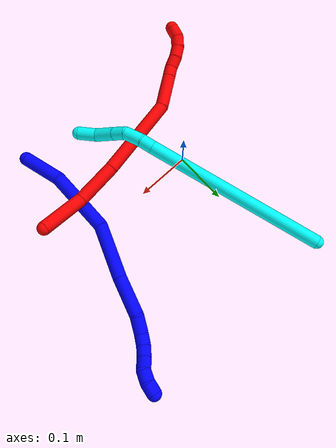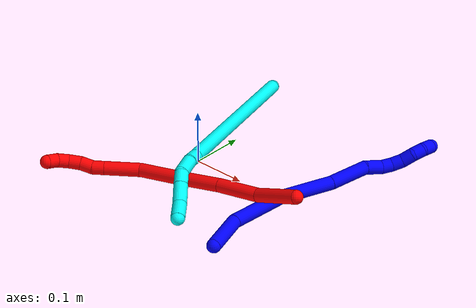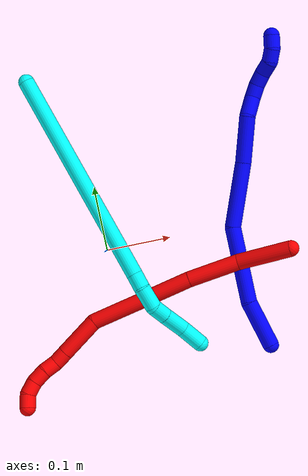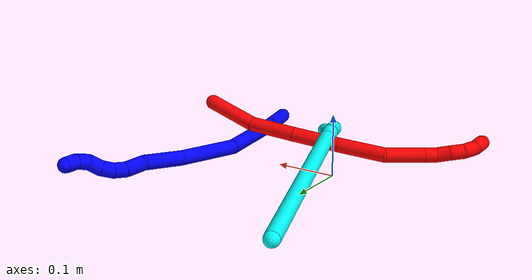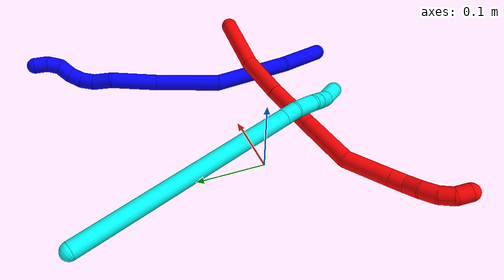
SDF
<sdf version="1.7">
 <world name="default">
  <plugin name="TubeGeneratorPlugin" filename="libtube_generator_plugin.so"/>
  <model name="photoneo_s_sensor">
   <static>1</static>
   <pose>0 0 2 1.57079 1.57079 3.14159</pose>
   <link name="link">
    <inertial><mass>0.1</mass></inertial>
    <sensor name="sensor" type="depth">
     <update_rate>30</update_rate>
     <camera>
      <horizontal_fov>1.22</horizontal_fov>
      <image><width>1920</width><height>1200</height><format>B8G8R8</format></image>
      <clip><near>0.1</near><far>4</far></clip>
      <depth_camera><output>points</output></depth_camera>
     </camera>
     <plugin name="camera_plugin" filename="libgazebo_ros_depth_camera.so">
      <baseline>0.2</baseline>
      <alwaysOn>1</alwaysOn>
      <updateRate>0.0</updateRate>
      <cameraName>camera_ir</cameraName>
      <imageTopicName>/camera/color/image_raw</imageTopicName>
      <cameraInfoTopicName>/camera/color/camera_info</cameraInfoTopicName>
      <depthImageTopicName>/camera/depth/image_raw</depthImageTopicName>
      <depthImageCameraInfoTopicName>/camera/depth/camera_info</depthImageCameraInfoTopicName>
      <pointCloudTopicName>/camera/depth/points</pointCloudTopicName>
      <frameName>fr_optical</frameName>
      <pointCloudCutoff>0.1</pointCloudCutoff>
      <pointCloudCutoffMax>2.0</pointCloudCutoffMax>
      <distortionK1>0</distortionK1>
      <distortionK2>0</distortionK2>
      <distortionK3>0</distortionK3>
      <distortionT1>0</distortionT1>
      <distortionT2>0</distortionT2>
      <CxPrime>0</CxPrime>
      <Cx>0</Cx>
      <Cy>0</Cy>
      <focalLength>0</focalLength>
      <hackBaseline>0</hackBaseline>
     </plugin>
    </sensor>
   </link>
  </model>
  <gravity>0 0 -9.8</gravity>
  <magnetic_field>6e-06 2.3e-05 -4.2e-05</magnetic_field>
  <atmosphere type="adiabatic"/>
  <physics name="default_physics" default="0" type="ode">
   <max_step_size>0.003</max_step_size>
   <real_time_factor>1</real_time_factor>
   <real_time_update_rate>1000</real_time_update_rate>
   <max_contacts>10000</max_contacts>
   <ode>
    <solver>
     <type>quick</type>
     <iters>100</iters>
     <sor>1.3</sor>
     <use_dynamic_moi_rescaling>0</use_dynamic_moi_rescaling>
    </solver>
    <constraints>
     <contact_max_correcting_vel>0</contact_max_correcting_vel>
     <contact_surface_layer>0.001</contact_surface_layer>
     <cfm>0</cfm>
     <erp>0.2</erp>
    </constraints>
   </ode>
  </physics>
  <scene><ambient>0.4 0.4 0.4 1</ambient><background>0.7 0.7 0.7 1</background><shadows>0</shadows></scene>
  <audio><device>default</device></audio>
  <spherical_coordinates>
   <surface_model>EARTH_WGS84</surface_model>
   <latitude_deg>0</latitude_deg>
   <longitude_deg>0</longitude_deg>
   <elevation>0</elevation>
   <heading_deg>0</heading_deg>
  </spherical_coordinates>
  <model name="bin">
   <static>1</static>
   <link name="bottom">
    <collision name="collision-bottom">
     <pose>0 0 -0.01 0 -0 0</pose>
     <geometry><box><size>0.8 0.6 0.02</size></box></geometry>
     <surface>
      <friction><ode><mu>100</mu><mu2>100</mu2></ode></friction>
      <contact><collide_bitmask>65535</collide_bitmask></contact>
     </surface>
    </collision>
   </link>
   <link name="west_wall">
    <collision name="collision-west_wall">
     <pose>-0.41 0 0.1 0 -0 0</pose>
     <geometry><box><size>0.02 0.6 0.2</size></box></geometry>
     <surface>
      <friction><ode><mu>100</mu><mu2>100</mu2></ode></friction>
      <contact><collide_bitmask>65535</collide_bitmask></contact>
     </surface>
    </collision>
   </link>
   <link name="east_wall">
    <collision name="collision-east_wall">
     <pose>0.41 0 0.1 0 -0 0</pose>
     <geometry><box><size>0.02 0.6 0.2</size></box></geometry>
     <surface>
      <friction><ode><mu>100</mu><mu2>100</mu2></ode></friction>
      <contact><collide_bitmask>65535</collide_bitmask></contact>
     </surface>
    </collision>
   </link>
   <link name="south_wall">
    <collision name="collision-south_wall">
     <pose>0 -0.31 0.1 0 -0 0</pose>
     <geometry><box><size>0.8 0.02 0.2</size></box></geometry>
     <surface>
      <friction><ode><mu>100</mu><mu2>100</mu2></ode></friction>
      <contact><collide_bitmask>65535</collide_bitmask></contact>
     </surface>
    </collision>
   </link>
   <link name="north_wall">
    <collision name="collision-north_wall">
     <pose>0 0.31 0.1 0 -0 0</pose>
     <geometry><box><size>0.8 0.02 0.2</size></box></geometry>
     <surface>
      <friction><ode><mu>100</mu><mu2>100</mu2></ode></friction>
      <contact><collide_bitmask>65535</collide_bitmask></contact>
     </surface>
    </collision>
   </link>
  </model>
  <model name="1">
   <static>0</static>
   <link name="1">
    <collision name="collision-cylinder-e_1_1_4">
     <pose>0.008022 0.035166 0.00889 -1.32319 0.217657 -0.169745</pose>
     <geometry><cylinder><radius>0.0125</radius><length>0.074298</length></cylinder></geometry>
     <surface>
      <friction><ode><mu>1.16</mu><mu2>1.16</mu2><slip1>0</slip1><slip2>0</slip2></ode></friction>
      <contact><ode><kp>1e+06</kp><kd>1</kd><max_vel>0</max_vel><min_depth>0.001</min_depth></ode></contact>
     </surface>
    </collision>
    <visual name="visual-cylinder-e_1_1_4">
     <pose>0.008022 0.035166 0.00889 -1.32319 0.217657 -0.169745</pose>
     <geometry><cylinder><radius>0.0125</radius><length>0.074298</length></cylinder></geometry>
     <material><ambient>0 0 1 1</ambient></material>
    </visual>
    <collision name="collision-cylinder-e_2_4_5">
     <pose>0.012756 0.125645 0.038302 -1.21552 -0.055672 0.03873</pose>
     <geometry><cylinder><radius>0.0125</radius><length>0.118177</length></cylinder></geometry>
     <surface>
      <friction><ode><mu>1.16</mu><mu2>1.16</mu2><slip1>0</slip1><slip2>0</slip2></ode></friction>
      <contact><ode><kp>1e+06</kp><kd>1</kd><max_vel>0</max_vel><min_depth>0.001</min_depth></ode></contact>
     </surface>
    </collision>
    <visual name="visual-cylinder-e_2_4_5">
     <pose>0.012756 0.125645 0.038302 -1.21552 -0.055672 0.03873</pose>
     <geometry><cylinder><radius>0.0125</radius><length>0.118177</length></cylinder></geometry>
     <material><ambient>0 0 1 1</ambient></material>
    </visual>
    <collision name="collision-cylinder-e_3_5_6">
     <pose>-0.011006 0.225664 0.070281 -1.31992 -0.417543 0.325907</pose>
     <geometry><cylinder><radius>0.0125</radius><length>0.100978</length></cylinder></geometry>
     <surface>
      <friction><ode><mu>1.16</mu><mu2>1.16</mu2><slip1>0</slip1><slip2>0</slip2></ode></friction>
      <contact><ode><kp>1e+06</kp><kd>1</kd><max_vel>0</max_vel><min_depth>0.001</min_depth></ode></contact>
     </surface>
    </collision>
    <visual name="visual-cylinder-e_3_5_6">
     <pose>-0.011006 0.225664 0.070281 -1.31992 -0.417543 0.325907</pose>
     <geometry><cylinder><radius>0.0125</radius><length>0.100978</length></cylinder></geometry>
     <material><ambient>0 0 1 1</ambient></material>
    </visual>
    <collision name="collision-cylinder-e_4_6_7">
     <pose>-0.043296 0.304324 0.086532 -1.43052 -0.331854 0.288934</pose>
     <geometry><cylinder><radius>0.0125</radius><length>0.072537</length></cylinder></geometry>
     <surface>
      <friction><ode><mu>1.16</mu><mu2>1.16</mu2><slip1>0</slip1><slip2>0</slip2></ode></friction>
      <contact><ode><kp>1e+06</kp><kd>1</kd><max_vel>0</max_vel><min_depth>0.001</min_depth></ode></contact>
     </surface>
    </collision>
    <visual name="visual-cylinder-e_4_6_7">
     <pose>-0.043296 0.304324 0.086532 -1.43052 -0.331854 0.288934</pose>
     <geometry><cylinder><radius>0.0125</radius><length>0.072537</length></cylinder></geometry>
     <material><ambient>0 0 1 1</ambient></material>
    </visual>
    <collision name="collision-cylinder-e_5_7_8">
     <pose>-0.063043 0.350066 0.097467 -1.09061 -0.537945 0.331392</pose>
     <geometry><cylinder><radius>0.0125</radius><length>0.030958</length></cylinder></geometry>
     <surface>
      <friction><ode><mu>1.16</mu><mu2>1.16</mu2><slip1>0</slip1><slip2>0</slip2></ode></friction>
      <contact><ode><kp>1e+06</kp><kd>1</kd><max_vel>0</max_vel><min_depth>0.001</min_depth></ode></contact>
     </surface>
    </collision>
    <visual name="visual-cylinder-e_5_7_8">
     <pose>-0.063043 0.350066 0.097467 -1.09061 -0.537945 0.331392</pose>
     <geometry><cylinder><radius>0.0125</radius><length>0.030958</length></cylinder></geometry>
     <material><ambient>0 0 1 1</ambient></material>
    </visual>
    <collision name="collision-cylinder-e_6_8_9">
     <pose>-0.076534 0.370328 0.104964 -1.41208 -0.574944 0.493908</pose>
     <geometry><cylinder><radius>0.0125</radius><length>0.020448</length></cylinder></geometry>
     <surface>
      <friction><ode><mu>1.16</mu><mu2>1.16</mu2><slip1>0</slip1><slip2>0</slip2></ode></friction>
      <contact><ode><kp>1e+06</kp><kd>1</kd><max_vel>0</max_vel><min_depth>0.001</min_depth></ode></contact>
     </surface>
    </collision>
    <visual name="visual-cylinder-e_6_8_9">
     <pose>-0.076534 0.370328 0.104964 -1.41208 -0.574944 0.493908</pose>
     <geometry><cylinder><radius>0.0125</radius><length>0.020448</length></cylinder></geometry>
     <material><ambient>0 0 1 1</ambient></material>
    </visual>
    <collision name="collision-cylinder-e_7_9_10">
     <pose>-0.088354 0.386907 0.104971 -1.73568 -0.650983 0.75807</pose>
     <geometry><cylinder><radius>0.0125</radius><length>0.020662</length></cylinder></geometry>
     <surface>
      <friction><ode><mu>1.16</mu><mu2>1.16</mu2><slip1>0</slip1><slip2>0</slip2></ode></friction>
      <contact><ode><kp>1e+06</kp><kd>1</kd><max_vel>0</max_vel><min_depth>0.001</min_depth></ode></contact>
     </surface>
    </collision>
    <visual name="visual-cylinder-e_7_9_10">
     <pose>-0.088354 0.386907 0.104971 -1.73568 -0.650983 0.75807</pose>
     <geometry><cylinder><radius>0.0125</radius><length>0.020662</length></cylinder></geometry>
     <material><ambient>0 0 1 1</ambient></material>
    </visual>
    <collision name="collision-cylinder-e_8_10_11">
     <pose>-0.100864 0.402775 0.099382 -2.07077 -0.615181 0.983311</pose>
     <geometry><cylinder><radius>0.0125</radius><length>0.021659</length></cylinder></geometry>
     <surface>
      <friction><ode><mu>1.16</mu><mu2>1.16</mu2><slip1>0</slip1><slip2>0</slip2></ode></friction>
      <contact><ode><kp>1e+06</kp><kd>1</kd><max_vel>0</max_vel><min_depth>0.001</min_depth></ode></contact>
     </surface>
    </collision>
    <visual name="visual-cylinder-e_8_10_11">
     <pose>-0.100864 0.402775 0.099382 -2.07077 -0.615181 0.983311</pose>
     <geometry><cylinder><radius>0.0125</radius><length>0.021659</length></cylinder></geometry>
     <material><ambient>0 0 1 1</ambient></material>
    </visual>
    <collision name="collision-cylinder-e_9_11_12">
     <pose>-0.111067 0.419786 0.095088 -1.5766 -0.40391 0.406196</pose>
     <geometry><cylinder><radius>0.0125</radius><length>0.020118</length></cylinder></geometry>
     <surface>
      <friction><ode><mu>1.16</mu><mu2>1.16</mu2><slip1>0</slip1><slip2>0</slip2></ode></friction>
      <contact><ode><kp>1e+06</kp><kd>1</kd><max_vel>0</max_vel><min_depth>0.001</min_depth></ode></contact>
     </surface>
    </collision>
    <visual name="visual-cylinder-e_9_11_12">
     <pose>-0.111067 0.419786 0.095088 -1.5766 -0.40391 0.406196</pose>
     <geometry><cylinder><radius>0.0125</radius><length>0.020118</length></cylinder></geometry>
     <material><ambient>0 0 1 1</ambient></material>
    </visual>
    <collision name="collision-cylinder-e_10_12_2">
     <pose>-0.117126 0.438432 0.098025 -1.26266 -0.210411 0.154108</pose>
     <geometry><cylinder><radius>0.0125</radius><length>0.020165</length></cylinder></geometry>
     <surface>
      <friction><ode><mu>1.16</mu><mu2>1.16</mu2><slip1>0</slip1><slip2>0</slip2></ode></friction>
      <contact><ode><kp>1e+06</kp><kd>1</kd><max_vel>0</max_vel><min_depth>0.001</min_depth></ode></contact>
     </surface>
    </collision>
    <visual name="visual-cylinder-e_10_12_2">
     <pose>-0.117126 0.438432 0.098025 -1.26266 -0.210411 0.154108</pose>
     <geometry><cylinder><radius>0.0125</radius><length>0.020165</length></cylinder></geometry>
     <material><ambient>0 0 1 1</ambient></material>
    </visual>
    <collision name="collision-sphere-2">
     <pose>-0.119232 0.447827 0.101016 0 -0 0</pose>
     <geometry><sphere><radius>0.0125</radius></sphere></geometry>
     <surface>
      <friction><ode><mu>1.16</mu><mu2>1.16</mu2><slip1>0</slip1><slip2>0</slip2></ode></friction>
      <contact><ode><kp>1e+06</kp><kd>1</kd><max_vel>0</max_vel><min_depth>0.001</min_depth></ode></contact>
     </surface>
    </collision>
    <visual name="visual-sphere-2">
     <pose>-0.119232 0.447827 0.101016 0 -0 0</pose>
     <geometry><sphere><radius>0.0125</radius></sphere></geometry>
     <material><ambient>0 0 1 1</ambient></material>
    </visual>
    <collision name="collision-sphere-12">
     <pose>-0.11502 0.429036 0.095035 0 -0 0</pose>
     <geometry><sphere><radius>0.0125</radius></sphere></geometry>
     <surface>
      <friction><ode><mu>1.16</mu><mu2>1.16</mu2><slip1>0</slip1><slip2>0</slip2></ode></friction>
      <contact><ode><kp>1e+06</kp><kd>1</kd><max_vel>0</max_vel><min_depth>0.001</min_depth></ode></contact>
     </surface>
    </collision>
    <visual name="visual-sphere-12">
     <pose>-0.11502 0.429036 0.095035 0 -0 0</pose>
     <geometry><sphere><radius>0.0125</radius></sphere></geometry>
     <material><ambient>0 0 1 1</ambient></material>
    </visual>
    <collision name="collision-sphere-11">
     <pose>-0.107114 0.410537 0.095142 0 -0 0</pose>
     <geometry><sphere><radius>0.0125</radius></sphere></geometry>
     <surface>
      <friction><ode><mu>1.16</mu><mu2>1.16</mu2><slip1>0</slip1><slip2>0</slip2></ode></friction>
      <contact><ode><kp>1e+06</kp><kd>1</kd><max_vel>0</max_vel><min_depth>0.001</min_depth></ode></contact>
     </surface>
    </collision>
    <visual name="visual-sphere-11">
     <pose>-0.107114 0.410537 0.095142 0 -0 0</pose>
     <geometry><sphere><radius>0.0125</radius></sphere></geometry>
     <material><ambient>0 0 1 1</ambient></material>
    </visual>
    <collision name="collision-sphere-10">
     <pose>-0.094614 0.395014 0.103622 0 -0 0</pose>
     <geometry><sphere><radius>0.0125</radius></sphere></geometry>
     <surface>
      <friction><ode><mu>1.16</mu><mu2>1.16</mu2><slip1>0</slip1><slip2>0</slip2></ode></friction>
      <contact><ode><kp>1e+06</kp><kd>1</kd><max_vel>0</max_vel><min_depth>0.001</min_depth></ode></contact>
     </surface>
    </collision>
    <visual name="visual-sphere-10">
     <pose>-0.094614 0.395014 0.103622 0 -0 0</pose>
     <geometry><sphere><radius>0.0125</radius></sphere></geometry>
     <material><ambient>0 0 1 1</ambient></material>
    </visual>
    <collision name="collision-sphere-9">
     <pose>-0.082093 0.3788 0.10632 0 -0 0</pose>
     <geometry><sphere><radius>0.0125</radius></sphere></geometry>
     <surface>
      <friction><ode><mu>1.16</mu><mu2>1.16</mu2><slip1>0</slip1><slip2>0</slip2></ode></friction>
      <contact><ode><kp>1e+06</kp><kd>1</kd><max_vel>0</max_vel><min_depth>0.001</min_depth></ode></contact>
     </surface>
    </collision>
    <visual name="visual-sphere-9">
     <pose>-0.082093 0.3788 0.10632 0 -0 0</pose>
     <geometry><sphere><radius>0.0125</radius></sphere></geometry>
     <material><ambient>0 0 1 1</ambient></material>
    </visual>
    <collision name="collision-sphere-4">
     <pose>0.016044 0.070332 0.01778 0 -0 0</pose>
     <geometry><sphere><radius>0.0125</radius></sphere></geometry>
     <surface>
      <friction><ode><mu>1.16</mu><mu2>1.16</mu2><slip1>0</slip1><slip2>0</slip2></ode></friction>
      <contact><ode><kp>1e+06</kp><kd>1</kd><max_vel>0</max_vel><min_depth>0.001</min_depth></ode></contact>
     </surface>
    </collision>
    <visual name="visual-sphere-4">
     <pose>0.016044 0.070332 0.01778 0 -0 0</pose>
     <geometry><sphere><radius>0.0125</radius></sphere></geometry>
     <material><ambient>0 0 1 1</ambient></material>
    </visual>
    <collision name="collision-sphere-1">
     <geometry><sphere><radius>0.0125</radius></sphere></geometry>
     <surface>
      <friction><ode><mu>1.16</mu><mu2>1.16</mu2><slip1>0</slip1><slip2>0</slip2></ode></friction>
      <contact><ode><kp>1e+06</kp><kd>1</kd><max_vel>0</max_vel><min_depth>0.001</min_depth></ode></contact>
     </surface>
    </collision>
    <visual name="visual-sphere-1">
     <geometry><sphere><radius>0.0125</radius></sphere></geometry>
     <material><ambient>0 0 1 1</ambient></material>
    </visual>
    <collision name="collision-sphere-8">
     <pose>-0.070974 0.361855 0.103608 0 -0 0</pose>
     <geometry><sphere><radius>0.0125</radius></sphere></geometry>
     <surface>
      <friction><ode><mu>1.16</mu><mu2>1.16</mu2><slip1>0</slip1><slip2>0</slip2></ode></friction>
      <contact><ode><kp>1e+06</kp><kd>1</kd><max_vel>0</max_vel><min_depth>0.001</min_depth></ode></contact>
     </surface>
    </collision>
    <visual name="visual-sphere-8">
     <pose>-0.070974 0.361855 0.103608 0 -0 0</pose>
     <geometry><sphere><radius>0.0125</radius></sphere></geometry>
     <material><ambient>0 0 1 1</ambient></material>
    </visual>
    <collision name="collision-sphere-5">
     <pose>0.009468 0.180957 0.058824 0 -0 0</pose>
     <geometry><sphere><radius>0.0125</radius></sphere></geometry>
     <surface>
      <friction><ode><mu>1.16</mu><mu2>1.16</mu2><slip1>0</slip1><slip2>0</slip2></ode></friction>
      <contact><ode><kp>1e+06</kp><kd>1</kd><max_vel>0</max_vel><min_depth>0.001</min_depth></ode></contact>
     </surface>
    </collision>
    <visual name="visual-sphere-5">
     <pose>0.009468 0.180957 0.058824 0 -0 0</pose>
     <geometry><sphere><radius>0.0125</radius></sphere></geometry>
     <material><ambient>0 0 1 1</ambient></material>
    </visual>
    <collision name="collision-sphere-6">
     <pose>-0.03148 0.270371 0.081738 0 -0 0</pose>
     <geometry><sphere><radius>0.0125</radius></sphere></geometry>
     <surface>
      <friction><ode><mu>1.16</mu><mu2>1.16</mu2><slip1>0</slip1><slip2>0</slip2></ode></friction>
      <contact><ode><kp>1e+06</kp><kd>1</kd><max_vel>0</max_vel><min_depth>0.001</min_depth></ode></contact>
     </surface>
    </collision>
    <visual name="visual-sphere-6">
     <pose>-0.03148 0.270371 0.081738 0 -0 0</pose>
     <geometry><sphere><radius>0.0125</radius></sphere></geometry>
     <material><ambient>0 0 1 1</ambient></material>
    </visual>
    <collision name="collision-sphere-7">
     <pose>-0.055112 0.338276 0.091327 0 -0 0</pose>
     <geometry><sphere><radius>0.0125</radius></sphere></geometry>
     <surface>
      <friction><ode><mu>1.16</mu><mu2>1.16</mu2><slip1>0</slip1><slip2>0</slip2></ode></friction>
      <contact><ode><kp>1e+06</kp><kd>1</kd><max_vel>0</max_vel><min_depth>0.001</min_depth></ode></contact>
     </surface>
    </collision>
    <visual name="visual-sphere-7">
     <pose>-0.055112 0.338276 0.091327 0 -0 0</pose>
     <geometry><sphere><radius>0.0125</radius></sphere></geometry>
     <material><ambient>0 0 1 1</ambient></material>
    </visual>
    <inertial>
     <pose>-0.028543 0.229474 0.063871 0 -0 0</pose>
     <mass>0.5</mass>
     <inertia>
      <ixx>0.000325</ixx>
      <ixy>0</ixy>
      <ixz>0</ixz>
      <iyy>0.000179</iyy>
      <iyz>0</iyz>
      <izz>-0.000228</izz>
     </inertia>
    </inertial>
   </link>
   <pose>0.218226 -0.194037 0.018084 2.86183 -0.053919 -3.08892</pose>
  </model>
  <model name="2">
   <static>0</static>
   <link name="2">
    <collision name="collision-cylinder-e_1_1_4">
     <pose>-0.023973 -0.015345 0.031446 0.453993 -0.600675 -0.142827</pose>
     <geometry><cylinder><radius>0.0125</radius><length>0.08483</length></cylinder></geometry>
     <surface>
      <friction><ode><mu>1.16</mu><mu2>1.16</mu2><slip1>0</slip1><slip2>0</slip2></ode></friction>
      <contact><ode><kp>1e+06</kp><kd>1</kd><max_vel>0</max_vel><min_depth>0.001</min_depth></ode></contact>
     </surface>
    </collision>
    <visual name="visual-cylinder-e_1_1_4">
     <pose>-0.023973 -0.015345 0.031446 0.453993 -0.600675 -0.142827</pose>
     <geometry><cylinder><radius>0.0125</radius><length>0.08483</length></cylinder></geometry>
     <material><ambient>1 0 0 1</ambient></material>
    </visual>
    <collision name="collision-cylinder-e_2_4_5">
     <pose>-0.069574 -0.036063 0.095914 0.161262 -0.573875 -0.04768</pose>
     <geometry><cylinder><radius>0.0125</radius><length>0.079677</length></cylinder></geometry>
     <surface>
      <friction><ode><mu>1.16</mu><mu2>1.16</mu2><slip1>0</slip1><slip2>0</slip2></ode></friction>
      <contact><ode><kp>1e+06</kp><kd>1</kd><max_vel>0</max_vel><min_depth>0.001</min_depth></ode></contact>
     </surface>
    </collision>
    <visual name="visual-cylinder-e_2_4_5">
     <pose>-0.069574 -0.036063 0.095914 0.161262 -0.573875 -0.04768</pose>
     <geometry><cylinder><radius>0.0125</radius><length>0.079677</length></cylinder></geometry>
     <material><ambient>1 0 0 1</ambient></material>
    </visual>
    <collision name="collision-cylinder-e_3_5_6">
     <pose>-0.110061 -0.047411 0.163655 0.17046 -0.491511 -0.042853</pose>
     <geometry><cylinder><radius>0.0125</radius><length>0.079919</length></cylinder></geometry>
     <surface>
      <friction><ode><mu>1.16</mu><mu2>1.16</mu2><slip1>0</slip1><slip2>0</slip2></ode></friction>
      <contact><ode><kp>1e+06</kp><kd>1</kd><max_vel>0</max_vel><min_depth>0.001</min_depth></ode></contact>
     </surface>
    </collision>
    <visual name="visual-cylinder-e_3_5_6">
     <pose>-0.110061 -0.047411 0.163655 0.17046 -0.491511 -0.042853</pose>
     <geometry><cylinder><radius>0.0125</radius><length>0.079919</length></cylinder></geometry>
     <material><ambient>1 0 0 1</ambient></material>
    </visual>
    <collision name="collision-cylinder-e_4_6_7">
     <pose>-0.148603 -0.058716 0.234072 0.148204 -0.499242 -0.037848</pose>
     <geometry><cylinder><radius>0.0125</radius><length>0.082223</length></cylinder></geometry>
     <surface>
      <friction><ode><mu>1.16</mu><mu2>1.16</mu2><slip1>0</slip1><slip2>0</slip2></ode></friction>
      <contact><ode><kp>1e+06</kp><kd>1</kd><max_vel>0</max_vel><min_depth>0.001</min_depth></ode></contact>
     </surface>
    </collision>
    <visual name="visual-cylinder-e_4_6_7">
     <pose>-0.148603 -0.058716 0.234072 0.148204 -0.499242 -0.037848</pose>
     <geometry><cylinder><radius>0.0125</radius><length>0.082223</length></cylinder></geometry>
     <material><ambient>1 0 0 1</ambient></material>
    </visual>
    <collision name="collision-cylinder-e_5_7_8">
     <pose>-0.171738 -0.064826 0.302273 0.023981 -0.105812 -0.00127</pose>
     <geometry><cylinder><radius>0.0125</radius><length>0.06539</length></cylinder></geometry>
     <surface>
      <friction><ode><mu>1.16</mu><mu2>1.16</mu2><slip1>0</slip1><slip2>0</slip2></ode></friction>
      <contact><ode><kp>1e+06</kp><kd>1</kd><max_vel>0</max_vel><min_depth>0.001</min_depth></ode></contact>
     </surface>
    </collision>
    <visual name="visual-cylinder-e_5_7_8">
     <pose>-0.171738 -0.064826 0.302273 0.023981 -0.105812 -0.00127</pose>
     <geometry><cylinder><radius>0.0125</radius><length>0.06539</length></cylinder></geometry>
     <material><ambient>1 0 0 1</ambient></material>
    </visual>
    <collision name="collision-cylinder-e_6_8_9">
     <pose>-0.176302 -0.065806 0.345439 0.018814 -0.103776 -0.000977</pose>
     <geometry><cylinder><radius>0.0125</radius><length>0.021446</length></cylinder></geometry>
     <surface>
      <friction><ode><mu>1.16</mu><mu2>1.16</mu2><slip1>0</slip1><slip2>0</slip2></ode></friction>
      <contact><ode><kp>1e+06</kp><kd>1</kd><max_vel>0</max_vel><min_depth>0.001</min_depth></ode></contact>
     </surface>
    </collision>
    <visual name="visual-cylinder-e_6_8_9">
     <pose>-0.176302 -0.065806 0.345439 0.018814 -0.103776 -0.000977</pose>
     <geometry><cylinder><radius>0.0125</radius><length>0.021446</length></cylinder></geometry>
     <material><ambient>1 0 0 1</ambient></material>
    </visual>
    <collision name="collision-cylinder-e_7_9_10">
     <pose>-0.180726 -0.063974 0.366501 -0.192996 -0.303074 0.029562</pose>
     <geometry><cylinder><radius>0.0125</radius><length>0.022202</length></cylinder></geometry>
     <surface>
      <friction><ode><mu>1.16</mu><mu2>1.16</mu2><slip1>0</slip1><slip2>0</slip2></ode></friction>
      <contact><ode><kp>1e+06</kp><kd>1</kd><max_vel>0</max_vel><min_depth>0.001</min_depth></ode></contact>
     </surface>
    </collision>
    <visual name="visual-cylinder-e_7_9_10">
     <pose>-0.180726 -0.063974 0.366501 -0.192996 -0.303074 0.029562</pose>
     <geometry><cylinder><radius>0.0125</radius><length>0.022202</length></cylinder></geometry>
     <material><ambient>1 0 0 1</ambient></material>
    </visual>
    <collision name="collision-cylinder-e_8_10_11">
     <pose>-0.185271 -0.060822 0.388038 -0.100261 -0.109599 0.005504</pose>
     <geometry><cylinder><radius>0.0125</radius><length>0.022526</length></cylinder></geometry>
     <surface>
      <friction><ode><mu>1.16</mu><mu2>1.16</mu2><slip1>0</slip1><slip2>0</slip2></ode></friction>
      <contact><ode><kp>1e+06</kp><kd>1</kd><max_vel>0</max_vel><min_depth>0.001</min_depth></ode></contact>
     </surface>
    </collision>
    <visual name="visual-cylinder-e_8_10_11">
     <pose>-0.185271 -0.060822 0.388038 -0.100261 -0.109599 0.005504</pose>
     <geometry><cylinder><radius>0.0125</radius><length>0.022526</length></cylinder></geometry>
     <material><ambient>1 0 0 1</ambient></material>
    </visual>
    <collision name="collision-cylinder-e_9_11_12">
     <pose>-0.184879 -0.057696 0.409365 -0.194376 0.155134 -0.015155</pose>
     <geometry><cylinder><radius>0.0125</radius><length>0.021019</length></cylinder></geometry>
     <surface>
      <friction><ode><mu>1.16</mu><mu2>1.16</mu2><slip1>0</slip1><slip2>0</slip2></ode></friction>
      <contact><ode><kp>1e+06</kp><kd>1</kd><max_vel>0</max_vel><min_depth>0.001</min_depth></ode></contact>
     </surface>
    </collision>
    <visual name="visual-cylinder-e_9_11_12">
     <pose>-0.184879 -0.057696 0.409365 -0.194376 0.155134 -0.015155</pose>
     <geometry><cylinder><radius>0.0125</radius><length>0.021019</length></cylinder></geometry>
     <material><ambient>1 0 0 1</ambient></material>
    </visual>
    <collision name="collision-cylinder-e_10_12_2">
     <pose>-0.177232 -0.053434 0.427705 -0.269963 0.618845 -0.086778</pose>
     <geometry><cylinder><radius>0.0125</radius><length>0.020768</length></cylinder></geometry>
     <surface>
      <friction><ode><mu>1.16</mu><mu2>1.16</mu2><slip1>0</slip1><slip2>0</slip2></ode></friction>
      <contact><ode><kp>1e+06</kp><kd>1</kd><max_vel>0</max_vel><min_depth>0.001</min_depth></ode></contact>
     </surface>
    </collision>
    <visual name="visual-cylinder-e_10_12_2">
     <pose>-0.177232 -0.053434 0.427705 -0.269963 0.618845 -0.086778</pose>
     <geometry><cylinder><radius>0.0125</radius><length>0.020768</length></cylinder></geometry>
     <material><ambient>1 0 0 1</ambient></material>
    </visual>
    <collision name="collision-sphere-2">
     <pose>-0.171208 -0.051178 0.435857 0 -0 0</pose>
     <geometry><sphere><radius>0.0125</radius></sphere></geometry>
     <surface>
      <friction><ode><mu>1.16</mu><mu2>1.16</mu2><slip1>0</slip1><slip2>0</slip2></ode></friction>
      <contact><ode><kp>1e+06</kp><kd>1</kd><max_vel>0</max_vel><min_depth>0.001</min_depth></ode></contact>
     </surface>
    </collision>
    <visual name="visual-sphere-2">
     <pose>-0.171208 -0.051178 0.435857 0 -0 0</pose>
     <geometry><sphere><radius>0.0125</radius></sphere></geometry>
     <material><ambient>1 0 0 1</ambient></material>
    </visual>
    <collision name="collision-sphere-12">
     <pose>-0.183256 -0.05569 0.419553 0 -0 0</pose>
     <geometry><sphere><radius>0.0125</radius></sphere></geometry>
     <surface>
      <friction><ode><mu>1.16</mu><mu2>1.16</mu2><slip1>0</slip1><slip2>0</slip2></ode></friction>
      <contact><ode><kp>1e+06</kp><kd>1</kd><max_vel>0</max_vel><min_depth>0.001</min_depth></ode></contact>
     </surface>
    </collision>
    <visual name="visual-sphere-12">
     <pose>-0.183256 -0.05569 0.419553 0 -0 0</pose>
     <geometry><sphere><radius>0.0125</radius></sphere></geometry>
     <material><ambient>1 0 0 1</ambient></material>
    </visual>
    <collision name="collision-sphere-11">
     <pose>-0.186503 -0.059701 0.399178 0 -0 0</pose>
     <geometry><sphere><radius>0.0125</radius></sphere></geometry>
     <surface>
      <friction><ode><mu>1.16</mu><mu2>1.16</mu2><slip1>0</slip1><slip2>0</slip2></ode></friction>
      <contact><ode><kp>1e+06</kp><kd>1</kd><max_vel>0</max_vel><min_depth>0.001</min_depth></ode></contact>
     </surface>
    </collision>
    <visual name="visual-sphere-11">
     <pose>-0.186503 -0.059701 0.399178 0 -0 0</pose>
     <geometry><sphere><radius>0.0125</radius></sphere></geometry>
     <material><ambient>1 0 0 1</ambient></material>
    </visual>
    <collision name="collision-sphere-10">
     <pose>-0.184039 -0.061942 0.376899 0 -0 0</pose>
     <geometry><sphere><radius>0.0125</radius></sphere></geometry>
     <surface>
      <friction><ode><mu>1.16</mu><mu2>1.16</mu2><slip1>0</slip1><slip2>0</slip2></ode></friction>
      <contact><ode><kp>1e+06</kp><kd>1</kd><max_vel>0</max_vel><min_depth>0.001</min_depth></ode></contact>
     </surface>
    </collision>
    <visual name="visual-sphere-10">
     <pose>-0.184039 -0.061942 0.376899 0 -0 0</pose>
     <geometry><sphere><radius>0.0125</radius></sphere></geometry>
     <material><ambient>1 0 0 1</ambient></material>
    </visual>
    <collision name="collision-sphere-9">
     <pose>-0.177413 -0.066007 0.356103 0 -0 0</pose>
     <geometry><sphere><radius>0.0125</radius></sphere></geometry>
     <surface>
      <friction><ode><mu>1.16</mu><mu2>1.16</mu2><slip1>0</slip1><slip2>0</slip2></ode></friction>
      <contact><ode><kp>1e+06</kp><kd>1</kd><max_vel>0</max_vel><min_depth>0.001</min_depth></ode></contact>
     </surface>
    </collision>
    <visual name="visual-sphere-9">
     <pose>-0.177413 -0.066007 0.356103 0 -0 0</pose>
     <geometry><sphere><radius>0.0125</radius></sphere></geometry>
     <material><ambient>1 0 0 1</ambient></material>
    </visual>
    <collision name="collision-sphere-4">
     <pose>-0.047946 -0.030691 0.062892 0 -0 0</pose>
     <geometry><sphere><radius>0.0125</radius></sphere></geometry>
     <surface>
      <friction><ode><mu>1.16</mu><mu2>1.16</mu2><slip1>0</slip1><slip2>0</slip2></ode></friction>
      <contact><ode><kp>1e+06</kp><kd>1</kd><max_vel>0</max_vel><min_depth>0.001</min_depth></ode></contact>
     </surface>
    </collision>
    <visual name="visual-sphere-4">
     <pose>-0.047946 -0.030691 0.062892 0 -0 0</pose>
     <geometry><sphere><radius>0.0125</radius></sphere></geometry>
     <material><ambient>1 0 0 1</ambient></material>
    </visual>
    <collision name="collision-sphere-1">
     <geometry><sphere><radius>0.0125</radius></sphere></geometry>
     <surface>
      <friction><ode><mu>1.16</mu><mu2>1.16</mu2><slip1>0</slip1><slip2>0</slip2></ode></friction>
      <contact><ode><kp>1e+06</kp><kd>1</kd><max_vel>0</max_vel><min_depth>0.001</min_depth></ode></contact>
     </surface>
    </collision>
    <visual name="visual-sphere-1">
     <geometry><sphere><radius>0.0125</radius></sphere></geometry>
     <material><ambient>1 0 0 1</ambient></material>
    </visual>
    <collision name="collision-sphere-8">
     <pose>-0.175191 -0.065605 0.334776 0 -0 0</pose>
     <geometry><sphere><radius>0.0125</radius></sphere></geometry>
     <surface>
      <friction><ode><mu>1.16</mu><mu2>1.16</mu2><slip1>0</slip1><slip2>0</slip2></ode></friction>
      <contact><ode><kp>1e+06</kp><kd>1</kd><max_vel>0</max_vel><min_depth>0.001</min_depth></ode></contact>
     </surface>
    </collision>
    <visual name="visual-sphere-8">
     <pose>-0.175191 -0.065605 0.334776 0 -0 0</pose>
     <geometry><sphere><radius>0.0125</radius></sphere></geometry>
     <material><ambient>1 0 0 1</ambient></material>
    </visual>
    <collision name="collision-sphere-5">
     <pose>-0.091202 -0.041434 0.128937 0 -0 0</pose>
     <geometry><sphere><radius>0.0125</radius></sphere></geometry>
     <surface>
      <friction><ode><mu>1.16</mu><mu2>1.16</mu2><slip1>0</slip1><slip2>0</slip2></ode></friction>
      <contact><ode><kp>1e+06</kp><kd>1</kd><max_vel>0</max_vel><min_depth>0.001</min_depth></ode></contact>
     </surface>
    </collision>
    <visual name="visual-sphere-5">
     <pose>-0.091202 -0.041434 0.128937 0 -0 0</pose>
     <geometry><sphere><radius>0.0125</radius></sphere></geometry>
     <material><ambient>1 0 0 1</ambient></material>
    </visual>
    <collision name="collision-sphere-6">
     <pose>-0.12892 -0.053387 0.198374 0 -0 0</pose>
     <geometry><sphere><radius>0.0125</radius></sphere></geometry>
     <surface>
      <friction><ode><mu>1.16</mu><mu2>1.16</mu2><slip1>0</slip1><slip2>0</slip2></ode></friction>
      <contact><ode><kp>1e+06</kp><kd>1</kd><max_vel>0</max_vel><min_depth>0.001</min_depth></ode></contact>
     </surface>
    </collision>
    <visual name="visual-sphere-6">
     <pose>-0.12892 -0.053387 0.198374 0 -0 0</pose>
     <geometry><sphere><radius>0.0125</radius></sphere></geometry>
     <material><ambient>1 0 0 1</ambient></material>
    </visual>
    <collision name="collision-sphere-7">
     <pose>-0.168285 -0.064046 0.26977 0 -0 0</pose>
     <geometry><sphere><radius>0.0125</radius></sphere></geometry>
     <surface>
      <friction><ode><mu>1.16</mu><mu2>1.16</mu2><slip1>0</slip1><slip2>0</slip2></ode></friction>
      <contact><ode><kp>1e+06</kp><kd>1</kd><max_vel>0</max_vel><min_depth>0.001</min_depth></ode></contact>
     </surface>
    </collision>
    <visual name="visual-sphere-7">
     <pose>-0.168285 -0.064046 0.26977 0 -0 0</pose>
     <geometry><sphere><radius>0.0125</radius></sphere></geometry>
     <material><ambient>1 0 0 1</ambient></material>
    </visual>
    <inertial>
     <pose>-0.11871 -0.04711 0.208348 0 -0 0</pose>
     <mass>0.5</mass>
     <inertia>
      <ixx>0.000175</ixx>
      <ixy>0</ixy>
      <ixz>0</ixz>
      <iyy>0.000208</iyy>
      <iyz>0</iyz>
      <izz>0.000175</izz>
     </inertia>
    </inertial>
   </link>
   <pose>0.273503 -0.052488 0.068867 1.56372 0.034231 -0.848233</pose>
  </model>
  <model name="3">
   <static>0</static>
   <link name="3">
    <collision name="collision-cylinder-e_1_1_4">
     <pose>0.025655 -0.055658 -0.159895 2.80662 0.15039 0.838365</pose>
     <geometry><cylinder><radius>0.0125</radius><length>0.342476</length></cylinder></geometry>
     <surface>
      <friction><ode><mu>1.16</mu><mu2>1.16</mu2><slip1>0</slip1><slip2>0</slip2></ode></friction>
      <contact><ode><kp>1e+06</kp><kd>1</kd><max_vel>0</max_vel><min_depth>0.001</min_depth></ode></contact>
     </surface>
    </collision>
    <visual name="visual-cylinder-e_1_1_4">
     <pose>0.025655 -0.055658 -0.159895 2.80662 0.15039 0.838365</pose>
     <geometry><cylinder><radius>0.0125</radius><length>0.342476</length></cylinder></geometry>
     <material><ambient>0.003922 1 0.996078 1</ambient></material>
    </visual>
    <collision name="collision-cylinder-e_2_4_5">
     <pose>0.053056 -0.114786 -0.330901 2.83897 0.148797 0.909361</pose>
     <geometry><cylinder><radius>0.0125</radius><length>0.023541</length></cylinder></geometry>
     <surface>
      <friction><ode><mu>1.16</mu><mu2>1.16</mu2><slip1>0</slip1><slip2>0</slip2></ode></friction>
      <contact><ode><kp>1e+06</kp><kd>1</kd><max_vel>0</max_vel><min_depth>0.001</min_depth></ode></contact>
     </surface>
    </collision>
    <visual name="visual-cylinder-e_2_4_5">
     <pose>0.053056 -0.114786 -0.330901 2.83897 0.148797 0.909361</pose>
     <geometry><cylinder><radius>0.0125</radius><length>0.023541</length></cylinder></geometry>
     <material><ambient>0.003922 1 0.996078 1</ambient></material>
    </visual>
    <collision name="collision-cylinder-e_3_5_6">
     <pose>0.058886 -0.126673 -0.356154 2.60469 0.24328 0.836327</pose>
     <geometry><cylinder><radius>0.0125</radius><length>0.033914</length></cylinder></geometry>
     <surface>
      <friction><ode><mu>1.16</mu><mu2>1.16</mu2><slip1>0</slip1><slip2>0</slip2></ode></friction>
      <contact><ode><kp>1e+06</kp><kd>1</kd><max_vel>0</max_vel><min_depth>0.001</min_depth></ode></contact>
     </surface>
    </collision>
    <visual name="visual-cylinder-e_3_5_6">
     <pose>0.058886 -0.126673 -0.356154 2.60469 0.24328 0.836327</pose>
     <geometry><cylinder><radius>0.0125</radius><length>0.033914</length></cylinder></geometry>
     <material><ambient>0.003922 1 0.996078 1</ambient></material>
    </visual>
    <collision name="collision-cylinder-e_4_6_7">
     <pose>0.064584 -0.145448 -0.376882 2.13716 0.130718 0.237242</pose>
     <geometry><cylinder><radius>0.0125</radius><length>0.024758</length></cylinder></geometry>
     <surface>
      <friction><ode><mu>1.16</mu><mu2>1.16</mu2><slip1>0</slip1><slip2>0</slip2></ode></friction>
      <contact><ode><kp>1e+06</kp><kd>1</kd><max_vel>0</max_vel><min_depth>0.001</min_depth></ode></contact>
     </surface>
    </collision>
    <visual name="visual-cylinder-e_4_6_7">
     <pose>0.064584 -0.145448 -0.376882 2.13716 0.130718 0.237242</pose>
     <geometry><cylinder><radius>0.0125</radius><length>0.024758</length></cylinder></geometry>
     <material><ambient>0.003922 1 0.996078 1</ambient></material>
    </visual>
    <collision name="collision-cylinder-e_5_7_8">
     <pose>0.068348 -0.172306 -0.393754 2.12821 0.110153 0.198016</pose>
     <geometry><cylinder><radius>0.0125</radius><length>0.039126</length></cylinder></geometry>
     <surface>
      <friction><ode><mu>1.16</mu><mu2>1.16</mu2><slip1>0</slip1><slip2>0</slip2></ode></friction>
      <contact><ode><kp>1e+06</kp><kd>1</kd><max_vel>0</max_vel><min_depth>0.001</min_depth></ode></contact>
     </surface>
    </collision>
    <visual name="visual-cylinder-e_5_7_8">
     <pose>0.068348 -0.172306 -0.393754 2.12821 0.110153 0.198016</pose>
     <geometry><cylinder><radius>0.0125</radius><length>0.039126</length></cylinder></geometry>
     <material><ambient>0.003922 1 0.996078 1</ambient></material>
    </visual>
    <collision name="collision-cylinder-e_6_8_2">
     <pose>0.069941 -0.200811 -0.417565 2.41573 -0.030831 -0.081149</pose>
     <geometry><cylinder><radius>0.0125</radius><length>0.036185</length></cylinder></geometry>
     <surface>
      <friction><ode><mu>1.16</mu><mu2>1.16</mu2><slip1>0</slip1><slip2>0</slip2></ode></friction>
      <contact><ode><kp>1e+06</kp><kd>1</kd><max_vel>0</max_vel><min_depth>0.001</min_depth></ode></contact>
     </surface>
    </collision>
    <visual name="visual-cylinder-e_6_8_2">
     <pose>0.069941 -0.200811 -0.417565 2.41573 -0.030831 -0.081149</pose>
     <geometry><cylinder><radius>0.0125</radius><length>0.036185</length></cylinder></geometry>
     <material><ambient>0.003922 1 0.996078 1</ambient></material>
    </visual>
    <collision name="collision-sphere-2">
     <pose>0.069383 -0.212814 -0.43109 0 -0 0</pose>
     <geometry><sphere><radius>0.0125</radius></sphere></geometry>
     <surface>
      <friction><ode><mu>1.16</mu><mu2>1.16</mu2><slip1>0</slip1><slip2>0</slip2></ode></friction>
      <contact><ode><kp>1e+06</kp><kd>1</kd><max_vel>0</max_vel><min_depth>0.001</min_depth></ode></contact>
     </surface>
    </collision>
    <visual name="visual-sphere-2">
     <pose>0.069383 -0.212814 -0.43109 0 -0 0</pose>
     <geometry><sphere><radius>0.0125</radius></sphere></geometry>
     <material><ambient>0.003922 1 0.996078 1</ambient></material>
    </visual>
    <collision name="collision-sphere-4">
     <pose>0.051311 -0.111317 -0.319789 0 -0 0</pose>
     <geometry><sphere><radius>0.0125</radius></sphere></geometry>
     <surface>
      <friction><ode><mu>1.16</mu><mu2>1.16</mu2><slip1>0</slip1><slip2>0</slip2></ode></friction>
      <contact><ode><kp>1e+06</kp><kd>1</kd><max_vel>0</max_vel><min_depth>0.001</min_depth></ode></contact>
     </surface>
    </collision>
    <visual name="visual-sphere-4">
     <pose>0.051311 -0.111317 -0.319789 0 -0 0</pose>
     <geometry><sphere><radius>0.0125</radius></sphere></geometry>
     <material><ambient>0.003922 1 0.996078 1</ambient></material>
    </visual>
    <collision name="collision-sphere-1">
     <geometry><sphere><radius>0.0125</radius></sphere></geometry>
     <surface>
      <friction><ode><mu>1.16</mu><mu2>1.16</mu2><slip1>0</slip1><slip2>0</slip2></ode></friction>
      <contact><ode><kp>1e+06</kp><kd>1</kd><max_vel>0</max_vel><min_depth>0.001</min_depth></ode></contact>
     </surface>
    </collision>
    <visual name="visual-sphere-1">
     <geometry><sphere><radius>0.0125</radius></sphere></geometry>
     <material><ambient>0.003922 1 0.996078 1</ambient></material>
    </visual>
    <collision name="collision-sphere-8">
     <pose>0.070499 -0.188807 -0.40404 0 -0 0</pose>
     <geometry><sphere><radius>0.0125</radius></sphere></geometry>
     <surface>
      <friction><ode><mu>1.16</mu><mu2>1.16</mu2><slip1>0</slip1><slip2>0</slip2></ode></friction>
      <contact><ode><kp>1e+06</kp><kd>1</kd><max_vel>0</max_vel><min_depth>0.001</min_depth></ode></contact>
     </surface>
    </collision>
    <visual name="visual-sphere-8">
     <pose>0.070499 -0.188807 -0.40404 0 -0 0</pose>
     <geometry><sphere><radius>0.0125</radius></sphere></geometry>
     <material><ambient>0.003922 1 0.996078 1</ambient></material>
    </visual>
    <collision name="collision-sphere-5">
     <pose>0.054801 -0.118255 -0.342012 0 -0 0</pose>
     <geometry><sphere><radius>0.0125</radius></sphere></geometry>
     <surface>
      <friction><ode><mu>1.16</mu><mu2>1.16</mu2><slip1>0</slip1><slip2>0</slip2></ode></friction>
      <contact><ode><kp>1e+06</kp><kd>1</kd><max_vel>0</max_vel><min_depth>0.001</min_depth></ode></contact>
     </surface>
    </collision>
    <visual name="visual-sphere-5">
     <pose>0.054801 -0.118255 -0.342012 0 -0 0</pose>
     <geometry><sphere><radius>0.0125</radius></sphere></geometry>
     <material><ambient>0.003922 1 0.996078 1</ambient></material>
    </visual>
    <collision name="collision-sphere-6">
     <pose>0.06297 -0.13509 -0.370297 0 -0 0</pose>
     <geometry><sphere><radius>0.0125</radius></sphere></geometry>
     <surface>
      <friction><ode><mu>1.16</mu><mu2>1.16</mu2><slip1>0</slip1><slip2>0</slip2></ode></friction>
      <contact><ode><kp>1e+06</kp><kd>1</kd><max_vel>0</max_vel><min_depth>0.001</min_depth></ode></contact>
     </surface>
    </collision>
    <visual name="visual-sphere-6">
     <pose>0.06297 -0.13509 -0.370297 0 -0 0</pose>
     <geometry><sphere><radius>0.0125</radius></sphere></geometry>
     <material><ambient>0.003922 1 0.996078 1</ambient></material>
    </visual>
    <collision name="collision-sphere-7">
     <pose>0.066197 -0.155805 -0.383468 0 -0 0</pose>
     <geometry><sphere><radius>0.0125</radius></sphere></geometry>
     <surface>
      <friction><ode><mu>1.16</mu><mu2>1.16</mu2><slip1>0</slip1><slip2>0</slip2></ode></friction>
      <contact><ode><kp>1e+06</kp><kd>1</kd><max_vel>0</max_vel><min_depth>0.001</min_depth></ode></contact>
     </surface>
    </collision>
    <visual name="visual-sphere-7">
     <pose>0.066197 -0.155805 -0.383468 0 -0 0</pose>
     <geometry><sphere><radius>0.0125</radius></sphere></geometry>
     <material><ambient>0.003922 1 0.996078 1</ambient></material>
    </visual>
    <inertial>
     <pose>0.037673 -0.087338 -0.22895 0 -0 0</pose>
     <mass>0.5</mass>
     <inertia>
      <ixx>0.004722</ixx>
      <ixy>0</ixy>
      <ixz>0</ixz>
      <iyy>0.000449</iyy>
      <iyz>0</iyz>
      <izz>0.000567</izz>
     </inertia>
    </inertial>
   </link>
   <pose>-0.068689 0.280924 0.011497 2.11981 0.546966 -2.59032</pose>
  </model>
 </world>
</sdf>
